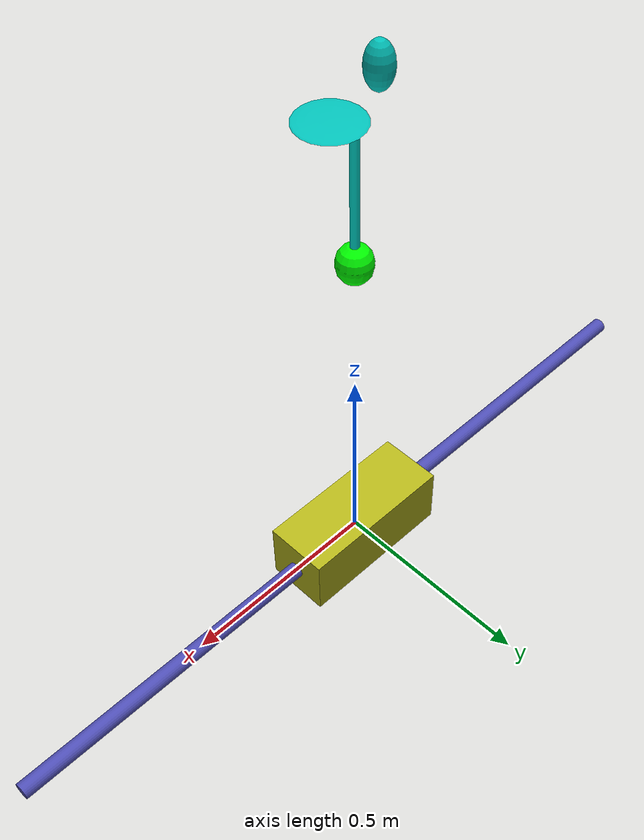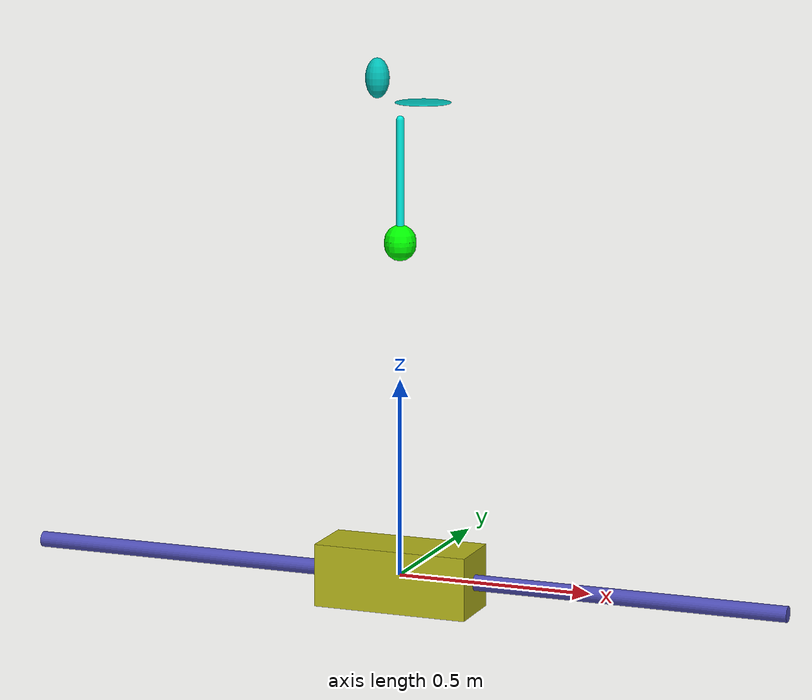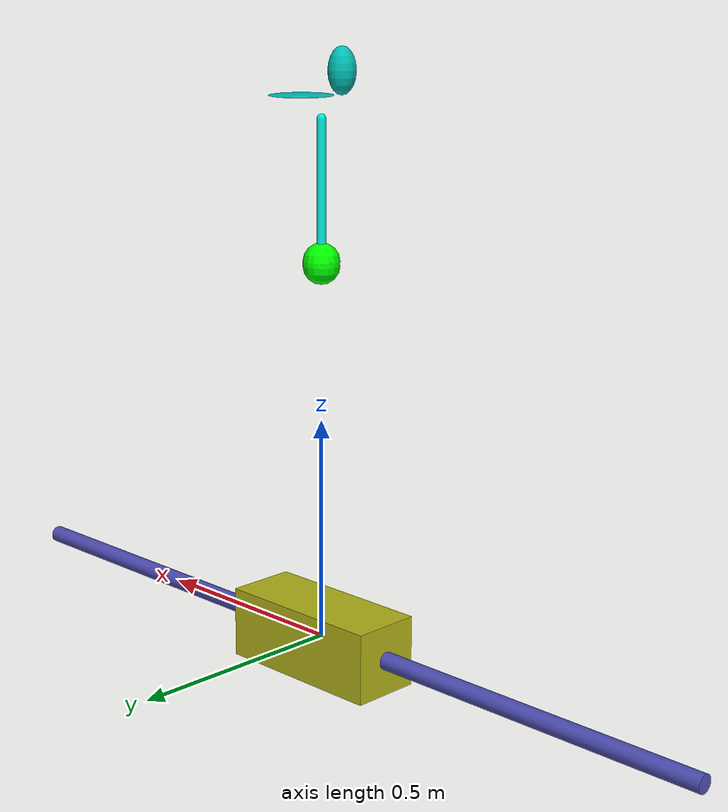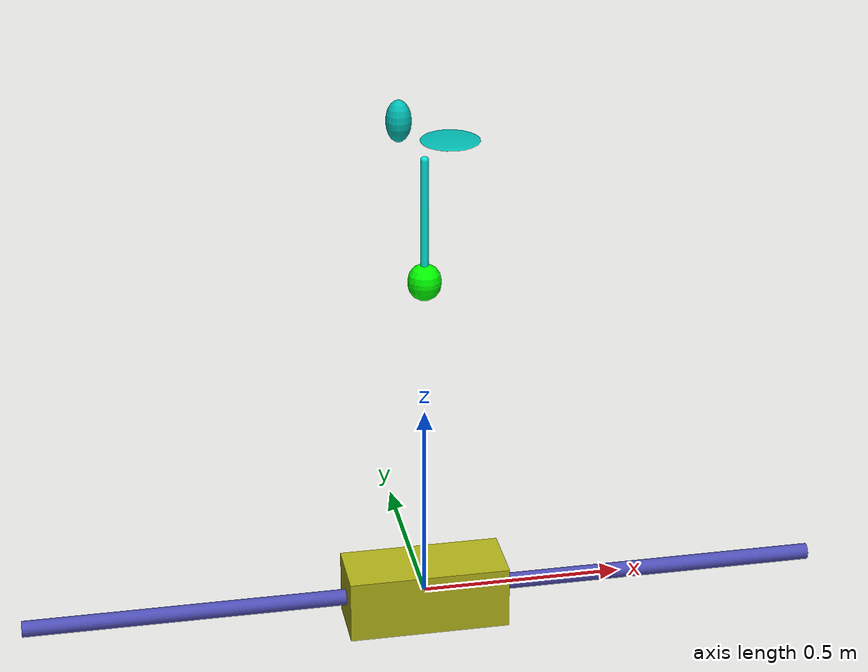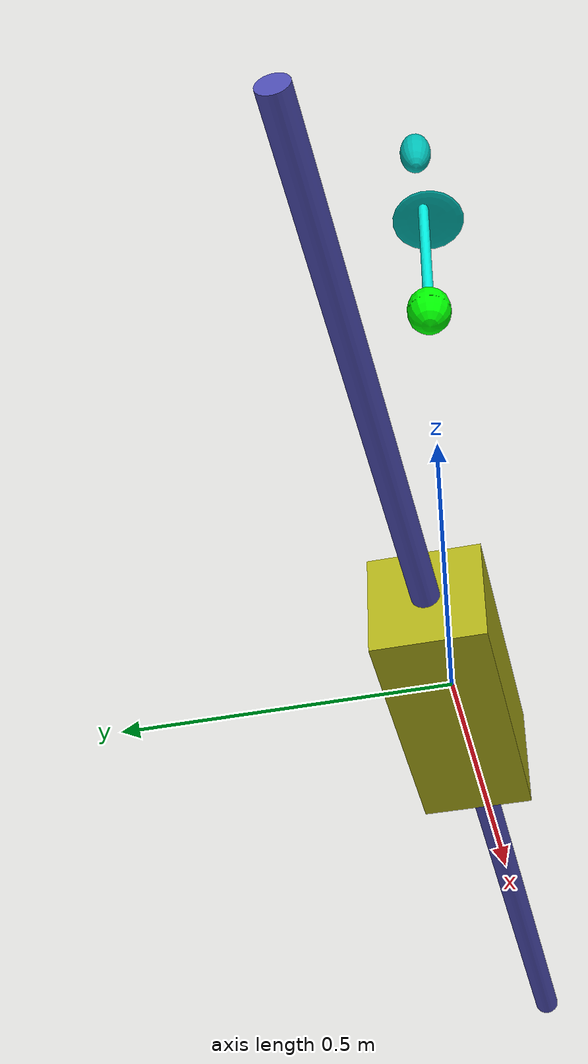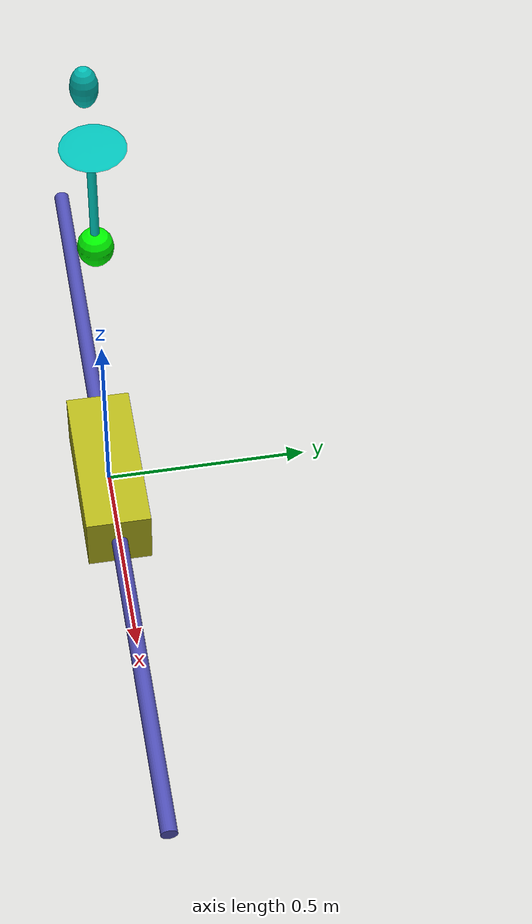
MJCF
<mujoco model="inverted pendulum">
	<compiler inertiafromgeom="true" />
	<default>
		<joint armature="0" damping="1" limited="true" />
		<geom contype="1" conaffinity="1" friction="1 .1 .1" rgba="0.7 0.7 0 1" />
		<tendon />
		<motor ctrlrange="-3 3" />
	</default>
	<option gravity="0 0 -9.81" integrator="implicitfast" timestep="0.02" />
	<size nstack="3000" />
	<worldbody>
		<!--geom
		name="ground" type="plane" pos="0 0 0" /-->
		<geom name="rail" pos="0 0 0" quat="0.707 0 0.707 0" rgba="0.3 0.3 0.7 1" size="0.02 1"
			type="cylinder" contype="0" conaffinity="0" />
		<body name="cart" pos="0 0 0">
			<joint
				axis="1 0 0" limited="true" name="slider"
				pos="0 0 0" range="-1 1" type="slide" />
			<geom pos="0 0 0" name="cart" rgba="0.7 0.7 0.1 1" size="0.2 0.08 0.08"
				type="box" mass="3" contype="1" conaffinity="1" />
		</body>
		<body name="pole" pos="0 0 1.0">
			<joint type="free" pos="0 0 0" />
			<geom fromto="0.00 0 -0.15   0.00 0 0.15" name="cpole"  rgba="0 0.905 0.854 1" size="0.01"
				type="capsule" mass="1" contype="1" conaffinity="1" />
			<geom fromto="-0.06 0 0.20  -0.06 0 0.30" name="ball1" rgba="0. 0.735 0.704 1" type="ellipsoid" size="0.03" contype="1" conaffinity="1" mass="9" />
			<geom fromto="0.06 0 0.19  0.06 0 0.20" name="ball2" rgba="0. 0.735 0.704 1" type="ellipsoid" size="0.07" contype="1" conaffinity="1" mass="2" />
			<geom fromto="0 0 -0.15  0 0 -0.16" type="capsule" size="0.04" mass="1" rgba="0 1 0 1" contype="1" conaffinity="1" />
		</body>
	</worldbody>
	<actuator>
		<motor ctrllimited="true" ctrlrange="-3 3" gear="100" joint="slider" name="slide" />
	</actuator>
</mujoco>
